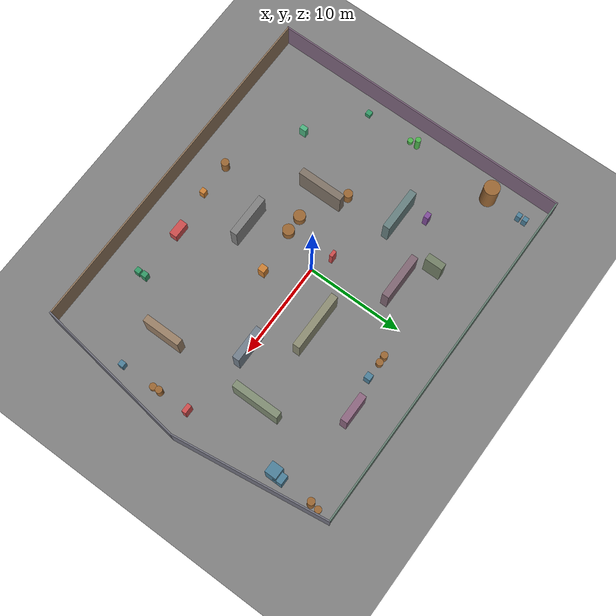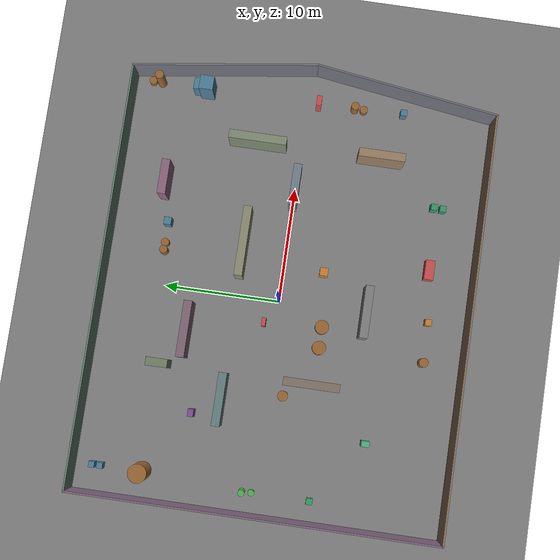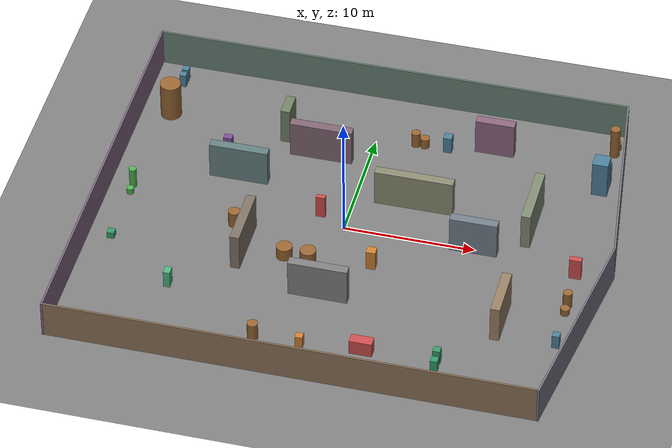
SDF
<?xml version="1.0"?>
<sdf version='1.9'>
  <world name='test_world'>
    <physics name='1ms' type='ignored'>
      <max_step_size>0.001</max_step_size>
      <real_time_factor>1</real_time_factor>
      <real_time_update_rate>1000</real_time_update_rate>
    </physics>
    <plugin name='ignition::gazebo::systems::Physics' filename='ignition-gazebo-physics-system' />
    <plugin name='ignition::gazebo::systems::UserCommands' filename='ignition-gazebo-user-commands-system' />
    <plugin name='ignition::gazebo::systems::SceneBroadcaster' filename='ignition-gazebo-scene-broadcaster-system' />

    <gravity>0 0 -9.8</gravity>
    <magnetic_field>6e-06 2.3e-05 -4.2e-05</magnetic_field>
    <atmosphere type='adiabatic' />
    <scene>
      <ambient>0.4 0.4 0.4 1</ambient>
      <background>0.7 0.7 0.7 1</background>
      <shadows>true</shadows>
    </scene>

    <model name='ground_plane'>
      <static>true</static>
      <link name='link'>
        <collision name='collision'>
        <geometry>
          <plane>
            <normal>0 0 1</normal>
            <!-- 36.75→43：右墙外拐8°后顶点外凸到20.53m，地板加宽覆盖五边形凸角 -->
            <size>43 31.8</size>
          </plane>
        </geometry>
          <surface>
            <friction>
              <ode />
            </friction>
            <bounce />
            <contact />
          </surface>
        </collision>
        <visual name='visual'>
          <geometry>
            <plane>
              <normal>0 0 1</normal>
              <size>43 31.8</size>
            </plane>
          </geometry>
          <material>
            <ambient>0.45 0.45 0.45 1</ambient>
            <diffuse>0.5 0.5 0.5 1</diffuse>
            <specular>0.2 0.2 0.2 1</specular>
          </material>
        </visual>
        <pose>0 -0.5 0 0 -0 0</pose>
        <inertial>
          <pose>0 0 0 0 -0 0</pose>
          <mass>1</mass>
          <inertia>
            <ixx>1</ixx><ixy>0</ixy><ixz>0</ixz><iyy>1</iyy><iyz>0</iyz><izz>1</izz>
          </inertia>
        </inertial>
        <enable_wind>false</enable_wind>
      </link>
      <pose>0 0 0 0 -0 0</pose>
      <self_collide>false</self_collide>
    </model>

    <light name='sun' type='directional'>
      <pose>0 0 10 0 -0 0</pose>
      <cast_shadows>true</cast_shadows>
      <intensity>1</intensity>
      <direction>-0.5 0.1 -0.9</direction>
      <diffuse>0.8 0.8 0.8 1</diffuse>
      <specular>0.2 0.2 0.2 1</specular>
      <attenuation>
        <range>1000</range><linear>0.01</linear><constant>0.9</constant><quadratic>0.001</quadratic>
      </attenuation>
      <spot><inner_angle>0</inner_angle><outer_angle>0</outer_angle><falloff>0</falloff></spot>
    </light>

    <!-- ==================== 围墙 (37.6x31.6m, 厚0.15m, 高3m) ==================== -->
    <model name='wall'>
      <link name='length_bottom'>
        <pose>0 -16.3 1.5 0 0 0</pose>
        <collision name='c'><geometry><box><size>36.6 0.15 3</size></box></geometry>
          <surface><friction><ode/></friction><bounce/><contact/></surface></collision>
        <visual name='v'><geometry><box><size>36.6 0.15 3</size></box></geometry>
          <material><ambient>0.55 0.45 0.35 1</ambient><diffuse>0.55 0.45 0.35 1</diffuse></material></visual>
        <enable_wind>false</enable_wind>
      </link>
      <link name='length_top'>
        <pose>0 15.3 1.5 0 0 0</pose>
        <collision name='c'><geometry><box><size>36.6 0.15 3</size></box></geometry>
          <surface><friction><ode/></friction><bounce/><contact/></surface></collision>
        <visual name='v'><geometry><box><size>36.6 0.15 3</size></box></geometry>
          <material><ambient>0.4 0.5 0.45 1</ambient><diffuse>0.4 0.5 0.45 1</diffuse></material></visual>
        <enable_wind>false</enable_wind>
      </link>
      <link name='width_left'>
        <pose>-18.3 -0.5 1.5 0 0 0</pose>
        <collision name='c'><geometry><box><size>0.15 31.8 3</size></box></geometry>
          <surface><friction><ode/></friction><bounce/><contact/></surface></collision>
        <visual name='v'><geometry><box><size>0.15 31.8 3</size></box></geometry>
          <material><ambient>0.5 0.4 0.5 1</ambient><diffuse>0.5 0.4 0.5 1</diffuse></material></visual>
        <enable_wind>false</enable_wind>
      </link>
      <!-- 原整面右墙(x=18.3)拆成两截、各外拐8°，与上下墙围成五边形：
           破坏长方形对称性，建图/调试时可从点云形态直接辨别+x朝向。
           顶点(20.534,-0.5)，两截各长16.06(15.9/cos8°)，角点(18.3,±)不变。 -->
      <link name='width_right_north'>
        <pose>19.417 7.45 1.5 0 0 0.1396</pose>
        <collision name='c'><geometry><box><size>0.15 16.06 3</size></box></geometry>
          <surface><friction><ode/></friction><bounce/><contact/></surface></collision>
        <visual name='v'><geometry><box><size>0.15 16.06 3</size></box></geometry>
          <material><ambient>0.45 0.45 0.5 1</ambient><diffuse>0.45 0.45 0.5 1</diffuse></material></visual>
        <enable_wind>false</enable_wind>
      </link>
      <link name='width_right_south'>
        <pose>19.417 -8.45 1.5 0 0 -0.1396</pose>
        <collision name='c'><geometry><box><size>0.15 16.06 3</size></box></geometry>
          <surface><friction><ode/></friction><bounce/><contact/></surface></collision>
        <visual name='v'><geometry><box><size>0.15 16.06 3</size></box></geometry>
          <material><ambient>0.45 0.45 0.5 1</ambient><diffuse>0.45 0.45 0.5 1</diffuse></material></visual>
        <enable_wind>false</enable_wind>
      </link>

      <!-- 内部隔墙 (厚0.72m, 高3m；长度按原值的 1/3、1/2、2/3 错落缩短) -->
      <link name='inner_v1'>
        <pose>13.5 -7 1.5 0 0 0</pose>
        <collision name='c'><geometry><box><size>0.72 4 3</size></box></geometry>
          <surface><friction><ode/></friction><bounce/><contact/></surface></collision>
        <visual name='v'><geometry><box><size>0.72 4 3</size></box></geometry>
          <material><ambient>0.6 0.5 0.4 1</ambient><diffuse>0.6 0.5 0.4 1</diffuse></material></visual>
        <enable_wind>false</enable_wind>
      </link>
      <link name='inner_v2'>
        <pose>13.5 3.75 1.5 0 0 0</pose>
        <collision name='c'><geometry><box><size>0.72 5 3</size></box></geometry>
          <surface><friction><ode/></friction><bounce/><contact/></surface></collision>
        <visual name='v'><geometry><box><size>0.72 5 3</size></box></geometry>
          <material><ambient>0.5 0.55 0.45 1</ambient><diffuse>0.5 0.55 0.45 1</diffuse></material></visual>
        <enable_wind>false</enable_wind>
      </link>
      <link name='inner_h1'>
        <pose>9 11.2 1.5 0 0 0</pose>
        <collision name='c'><geometry><box><size>3 0.72 3</size></box></geometry>
          <surface><friction><ode/></friction><bounce/><contact/></surface></collision>
        <visual name='v'><geometry><box><size>3 0.72 3</size></box></geometry>
          <material><ambient>0.55 0.4 0.5 1</ambient><diffuse>0.55 0.4 0.5 1</diffuse></material></visual>
        <enable_wind>false</enable_wind>
      </link>
      <link name='inner_h2'>
        <pose>9.9 0 1.5 0 0 0</pose>
        <collision name='c'><geometry><box><size>3.6 0.72 3</size></box></geometry>
          <surface><friction><ode/></friction><bounce/><contact/></surface></collision>
        <visual name='v'><geometry><box><size>3.6 0.72 3</size></box></geometry>
          <material><ambient>0.45 0.5 0.55 1</ambient><diffuse>0.45 0.5 0.55 1</diffuse></material></visual>
        <enable_wind>false</enable_wind>
      </link>
      <link name='inner_v3'>
        <pose>-6.7 -3.75 1.5 0 0 0</pose>
        <collision name='c'><geometry><box><size>0.72 4.8 3</size></box></geometry>
          <surface><friction><ode/></friction><bounce/><contact/></surface></collision>
        <visual name='v'><geometry><box><size>0.72 4.8 3</size></box></geometry>
          <material><ambient>0.5 0.45 0.4 1</ambient><diffuse>0.5 0.45 0.4 1</diffuse></material></visual>
        <enable_wind>false</enable_wind>
      </link>
      <link name='inner_h3'>
        <pose>4.5 3.7 1.5 0 0 0</pose>
        <collision name='c'><geometry><box><size>6 0.72 3</size></box></geometry>
          <surface><friction><ode/></friction><bounce/><contact/></surface></collision>
        <visual name='v'><geometry><box><size>6 0.72 3</size></box></geometry>
          <material><ambient>0.55 0.55 0.45 1</ambient><diffuse>0.55 0.55 0.45 1</diffuse></material></visual>
        <enable_wind>false</enable_wind>
      </link>
      <link name='inner_h4'>
        <pose>-9 3.7 1.5 0 0 0</pose>
        <collision name='c'><geometry><box><size>4.5 0.72 3</size></box></geometry>
          <surface><friction><ode/></friction><bounce/><contact/></surface></collision>
        <visual name='v'><geometry><box><size>4.5 0.72 3</size></box></geometry>
          <material><ambient>0.4 0.5 0.5 1</ambient><diffuse>0.4 0.5 0.5 1</diffuse></material></visual>
        <enable_wind>false</enable_wind>
      </link>
      <link name='inner_h5'>
        <pose>-3.6 7.5 1.5 0 0 0</pose>
        <collision name='c'><geometry><box><size>4.8 0.72 3</size></box></geometry>
          <surface><friction><ode/></friction><bounce/><contact/></surface></collision>
        <visual name='v'><geometry><box><size>4.8 0.72 3</size></box></geometry>
          <material><ambient>0.5 0.4 0.45 1</ambient><diffuse>0.5 0.4 0.45 1</diffuse></material></visual>
        <enable_wind>false</enable_wind>
      </link>
      <link name='inner_v4'>
        <pose>-6.7 9.35 1.5 0 0 0</pose>
        <collision name='c'><geometry><box><size>0.72 1.85 3</size></box></geometry>
          <surface><friction><ode/></friction><bounce/><contact/></surface></collision>
        <visual name='v'><geometry><box><size>0.72 1.85 3</size></box></geometry>
          <material><ambient>0.45 0.5 0.4 1</ambient><diffuse>0.45 0.5 0.4 1</diffuse></material></visual>
        <enable_wind>false</enable_wind>
      </link>
      <link name='inner_h6'>
        <pose>0 -7.5 1.5 0 0 0</pose>
        <collision name='c'><geometry><box><size>4.47 0.72 3</size></box></geometry>
          <surface><friction><ode/></friction><bounce/><contact/></surface></collision>
        <visual name='v'><geometry><box><size>4.47 0.72 3</size></box></geometry>
          <material><ambient>0.5 0.5 0.5 1</ambient><diffuse>0.5 0.5 0.5 1</diffuse></material></visual>
        <enable_wind>false</enable_wind>
      </link>

      <static>true</static>
      <self_collide>false</self_collide>
    </model>

    <!-- ==================== 特征物体 (高度随机 0.5~1.5m, Z = 高度/2) ==================== -->
    <!-- 右上房间 -->
    <model name='fm_cyl_1'><static>true</static><pose>17.855 13.0 1.3 0 0 0</pose>
      <link name='l'><collision name='c'><geometry><cylinder><radius>0.37</radius><length>2.6</length></cylinder></geometry></collision>
      <visual name='v'><geometry><cylinder><radius>0.37</radius><length>2.6</length></cylinder></geometry><material><ambient>0.6 0.4 0.2 1</ambient><diffuse>0.6 0.4 0.2 1</diffuse></material></visual></link></model>
    <model name='fm_box_2a'><static>true</static><pose>17.725 9.5 1.0 0 0 0</pose>
      <link name='l'><collision name='c'><geometry><box><size>1.0 1.0 2.0</size></box></geometry></collision>
      <visual name='v'><geometry><box><size>1.0 1.0 2.0</size></box></geometry><material><ambient>0.3 0.5 0.6 1</ambient><diffuse>0.3 0.5 0.6 1</diffuse></material></visual></link></model>
    <model name='fm_box_2b'><static>true</static><pose>17.625 8.8 1.5 0 0 0</pose>
      <link name='l'><collision name='c'><geometry><box><size>1.2 1.2 3.0</size></box></geometry></collision>
      <visual name='v'><geometry><box><size>1.2 1.2 3.0</size></box></geometry><material><ambient>0.3 0.5 0.6 1</ambient><diffuse>0.3 0.5 0.6 1</diffuse></material></visual></link></model>
    <model name='fm_cyl_3a'><static>true</static><pose>17.875 13.8 0.275 0 0 0</pose>
      <link name='l'><collision name='c'><geometry><cylinder><radius>0.35</radius><length>0.55</length></cylinder></geometry></collision>
      <visual name='v'><geometry><cylinder><radius>0.35</radius><length>0.55</length></cylinder></geometry><material><ambient>0.6 0.4 0.2 1</ambient><diffuse>0.6 0.4 0.2 1</diffuse></material></visual></link></model>

    <!-- 左上盲巷 -->
    <model name='fm_cyl_4'><static>true</static><pose>-16.0 9.5 1.5 0 0 0</pose>
      <link name='l'><collision name='c'><geometry><cylinder><radius>0.8</radius><length>3.0</length></cylinder></geometry></collision>
      <visual name='v'><geometry><cylinder><radius>0.8</radius><length>3.0</length></cylinder></geometry><material><ambient>0.6 0.4 0.2 1</ambient><diffuse>0.6 0.4 0.2 1</diffuse></material></visual></link></model>
    <model name='fm_box_5a'><static>true</static><pose>-16.0 13.0 0.55 0 0 0</pose>
      <link name='l'><collision name='c'><geometry><box><size>0.5 0.5 1.1</size></box></geometry></collision>
      <visual name='v'><geometry><box><size>0.5 0.5 1.1</size></box></geometry><material><ambient>0.3 0.5 0.6 1</ambient><diffuse>0.3 0.5 0.6 1</diffuse></material></visual></link></model>
    <model name='fm_box_5b'><static>true</static><pose>-16.0 13.7 0.55 0 0 0</pose>
      <link name='l'><collision name='c'><geometry><box><size>0.5 0.5 1.1</size></box></geometry></collision>
      <visual name='v'><geometry><box><size>0.5 0.5 1.1</size></box></geometry><material><ambient>0.3 0.5 0.6 1</ambient><diffuse>0.3 0.5 0.6 1</diffuse></material></visual></link></model>

    <!-- 上中部 -->
    <model name='fm_box_6'><static>true</static><pose>5.5 10.5 0.7 0 0 0</pose>
      <link name='l'><collision name='c'><geometry><box><size>0.65 0.65 1.4</size></box></geometry></collision>
      <visual name='v'><geometry><box><size>0.65 0.65 1.4</size></box></geometry><material><ambient>0.3 0.5 0.6 1</ambient><diffuse>0.3 0.5 0.6 1</diffuse></material></visual></link></model>
    <model name='fm_cyl_7a'><static>true</static><pose>3.0 10.5 0.625 0 0 0</pose>
      <link name='l'><collision name='c'><geometry><cylinder><radius>0.35</radius><length>1.25</length></cylinder></geometry></collision>
      <visual name='v'><geometry><cylinder><radius>0.35</radius><length>1.25</length></cylinder></geometry><material><ambient>0.6 0.4 0.2 1</ambient><diffuse>0.6 0.4 0.2 1</diffuse></material></visual></link></model>
    <model name='fm_cyl_7b'><static>true</static><pose>3.7 10.5 0.425 0 0 0</pose>
      <link name='l'><collision name='c'><geometry><cylinder><radius>0.35</radius><length>0.85</length></cylinder></geometry></collision>
      <visual name='v'><geometry><cylinder><radius>0.35</radius><length>0.85</length></cylinder></geometry><material><ambient>0.6 0.4 0.2 1</ambient><diffuse>0.6 0.4 0.2 1</diffuse></material></visual></link></model>

    <!-- 右中走廊 -->
    <model name='fm_cub_8'><static>true</static><pose>17.775 -1.0 0.9 0 0 0</pose>
      <link name='l'><collision name='c'><geometry><box><size>0.9 0.45 1.8</size></box></geometry></collision>
      <visual name='v'><geometry><box><size>0.9 0.45 1.8</size></box></geometry><material><ambient>0.8 0.3 0.3 1</ambient><diffuse>0.8 0.3 0.3 1</diffuse></material></visual></link></model>
    <model name='fm_cyl_9a'><static>true</static><pose>17.875 -5.0 0.275 0 0 0</pose>
      <link name='l'><collision name='c'><geometry><cylinder><radius>0.35</radius><length>0.55</length></cylinder></geometry></collision>
      <visual name='v'><geometry><cylinder><radius>0.35</radius><length>0.55</length></cylinder></geometry><material><ambient>0.6 0.4 0.2 1</ambient><diffuse>0.6 0.4 0.2 1</diffuse></material></visual></link></model>
    <model name='fm_cyl_9b'><static>true</static><pose>17.875 -4.2 0.675 0 0 0</pose>
      <link name='l'><collision name='c'><geometry><cylinder><radius>0.35</radius><length>1.35</length></cylinder></geometry></collision>
      <visual name='v'><geometry><cylinder><radius>0.35</radius><length>1.35</length></cylinder></geometry><material><ambient>0.6 0.4 0.2 1</ambient><diffuse>0.6 0.4 0.2 1</diffuse></material></visual></link></model>
    <model name='fm_box_10'><static>true</static><pose>17.95 -8.5 0.575 0 0 0</pose>
      <link name='l'><collision name='c'><geometry><box><size>0.55 0.55 1.15</size></box></geometry></collision>
      <visual name='v'><geometry><box><size>0.55 0.55 1.15</size></box></geometry><material><ambient>0.3 0.5 0.6 1</ambient><diffuse>0.3 0.5 0.6 1</diffuse></material></visual></link></model>

    <!-- 中左部 -->
    <model name='fm_box_11'><static>true</static><pose>3.0 -3.5 0.8 0 0 0</pose>
      <link name='l'><collision name='c'><geometry><box><size>0.7 0.7 1.6</size></box></geometry></collision>
      <visual name='v'><geometry><box><size>0.7 0.7 1.6</size></box></geometry><material><ambient>0.8 0.5 0.2 1</ambient><diffuse>0.8 0.5 0.2 1</diffuse></material></visual></link></model>
    <model name='fm_cyl_12a'><static>true</static><pose>-3.5 -4.0 0.5 0 0 0</pose>
      <link name='l'><collision name='c'><geometry><cylinder><radius>0.6</radius><length>1.0</length></cylinder></geometry></collision>
      <visual name='v'><geometry><cylinder><radius>0.6</radius><length>1.0</length></cylinder></geometry><material><ambient>0.6 0.4 0.2 1</ambient><diffuse>0.6 0.4 0.2 1</diffuse></material></visual></link></model>
    <model name='fm_cyl_12b'><static>true</static><pose>-1.7 -4.0 0.5 0 0 0</pose>
      <link name='l'><collision name='c'><geometry><cylinder><radius>0.6</radius><length>1.0</length></cylinder></geometry></collision>
      <visual name='v'><geometry><cylinder><radius>0.6</radius><length>1.0</length></cylinder></geometry><material><ambient>0.6 0.4 0.2 1</ambient><diffuse>0.6 0.4 0.2 1</diffuse></material></visual></link></model>
    <model name='fm_cub_13a'><static>true</static><pose>-2.0 1.0 0.95 0 0 0</pose>
      <link name='l'><collision name='c'><geometry><box><size>0.7 0.35 1.9</size></box></geometry></collision>
      <visual name='v'><geometry><box><size>0.7 0.35 1.9</size></box></geometry><material><ambient>0.8 0.3 0.3 1</ambient><diffuse>0.8 0.3 0.3 1</diffuse></material></visual></link></model>

    <!-- 左下角 -->
    <model name='fm_box_14'><static>true</static><pose>-16.5 -5.0 0.275 0 0 0</pose>
      <link name='l'><collision name='c'><geometry><box><size>0.55 0.55 0.55</size></box></geometry></collision>
      <visual name='v'><geometry><box><size>0.55 0.55 0.55</size></box></geometry><material><ambient>0.2 0.6 0.4 1</ambient><diffuse>0.2 0.6 0.4 1</diffuse></material></visual></link></model>
    <model name='fm_cyl_15'><static>true</static><pose>-8.0 -1.5 0.65 0 0 0</pose>
      <link name='l'><collision name='c'><geometry><cylinder><radius>0.45</radius><length>1.3</length></cylinder></geometry></collision>
      <visual name='v'><geometry><cylinder><radius>0.45</radius><length>1.3</length></cylinder></geometry><material><ambient>0.6 0.4 0.2 1</ambient><diffuse>0.6 0.4 0.2 1</diffuse></material></visual></link></model>
    <model name='fm_cyl_16a'><static>true</static><pose>-16.5 0.0 0.25 0 0 0</pose>
      <link name='l'><collision name='c'><geometry><cylinder><radius>0.28</radius><length>0.5</length></cylinder></geometry></collision>
      <visual name='v'><geometry><cylinder><radius>0.28</radius><length>0.5</length></cylinder></geometry><material><ambient>0.3 0.7 0.3 1</ambient><diffuse>0.3 0.7 0.3 1</diffuse></material></visual></link></model>
    <model name='fm_cyl_16b'><static>true</static><pose>-16.5 0.8 0.85 0 0 0</pose>
      <link name='l'><collision name='c'><geometry><cylinder><radius>0.28</radius><length>1.7</length></cylinder></geometry></collision>
      <visual name='v'><geometry><cylinder><radius>0.28</radius><length>1.7</length></cylinder></geometry><material><ambient>0.3 0.7 0.3 1</ambient><diffuse>0.3 0.7 0.3 1</diffuse></material></visual></link></model>

    <!-- 下中部 -->
    <model name='fm_cub_17'><static>true</static><pose>4.5 -12.5 0.6 0 0 0</pose>
      <link name='l'><collision name='c'><geometry><box><size>1.7 0.8 1.2</size></box></geometry></collision>
      <visual name='v'><geometry><box><size>1.7 0.8 1.2</size></box></geometry><material><ambient>0.8 0.3 0.3 1</ambient><diffuse>0.8 0.3 0.3 1</diffuse></material></visual></link></model>
    <model name='fm_cyl_18'><static>true</static><pose>-3.5 -13.0 0.725 0 0 0</pose>
      <link name='l'><collision name='c'><geometry><cylinder><radius>0.4</radius><length>1.45</length></cylinder></geometry></collision>
      <visual name='v'><geometry><cylinder><radius>0.4</radius><length>1.45</length></cylinder></geometry><material><ambient>0.6 0.4 0.2 1</ambient><diffuse>0.6 0.4 0.2 1</diffuse></material></visual></link></model>
    <model name='fm_box_19'><static>true</static><pose>0.0 -13.0 0.525 0 0 0</pose>
      <link name='l'><collision name='c'><geometry><box><size>0.55 0.55 1.05</size></box></geometry></collision>
      <visual name='v'><geometry><box><size>0.55 0.55 1.05</size></box></geometry><material><ambient>0.8 0.5 0.2 1</ambient><diffuse>0.8 0.5 0.2 1</diffuse></material></visual></link></model>

    <!-- 右下角 -->
    <model name='fm_box_21a'><static>true</static><pose>10.0 -13.0 0.5 0 0 0</pose>
      <link name='l'><collision name='c'><geometry><box><size>0.55 0.55 1.0</size></box></geometry></collision>
      <visual name='v'><geometry><box><size>0.55 0.55 1.0</size></box></geometry><material><ambient>0.2 0.6 0.4 1</ambient><diffuse>0.2 0.6 0.4 1</diffuse></material></visual></link></model>
    <model name='fm_box_21b'><static>true</static><pose>10.0 -12.2 0.625 0 0 0</pose>
      <link name='l'><collision name='c'><geometry><box><size>0.55 0.55 1.25</size></box></geometry></collision>
      <visual name='v'><geometry><box><size>0.55 0.55 1.25</size></box></geometry><material><ambient>0.2 0.6 0.4 1</ambient><diffuse>0.2 0.6 0.4 1</diffuse></material></visual></link></model>

    <!-- ===== 新增随机障碍物 (4个, 高度0.5~1.5m) ===== -->
    <!-- 右下空旷区 -->
    <!-- 左下空旷区 -->
    <model name='fm_box_new3'><static>true</static><pose>-11.0 -9.0 0.7 0 0 0</pose>
      <link name='l'><collision name='c'><geometry><box><size>0.5 0.7 1.4</size></box></geometry></collision>
      <visual name='v'><geometry><box><size>0.5 0.7 1.4</size></box></geometry><material><ambient>0.3 0.7 0.5 1</ambient><diffuse>0.3 0.7 0.5 1</diffuse></material></visual></link></model>
    <!-- 中央空旷区 -->
    <!-- 左上空旷区 -->
    <model name='fm_box_new5'><static>true</static><pose>-10.5 6.0 0.9 0 0 0</pose>
      <link name='l'><collision name='c'><geometry><box><size>0.65 0.5 1.8</size></box></geometry></collision>
      <visual name='v'><geometry><box><size>0.65 0.5 1.8</size></box></geometry><material><ambient>0.5 0.3 0.6 1</ambient><diffuse>0.5 0.3 0.6 1</diffuse></material></visual></link></model>
  </world>
</sdf>
